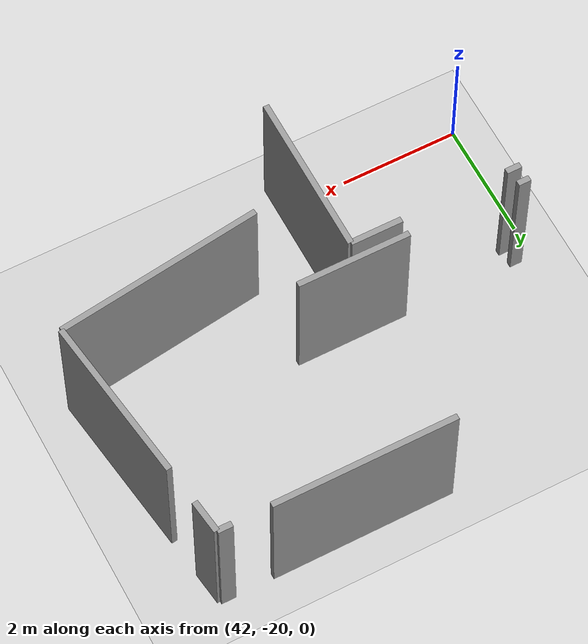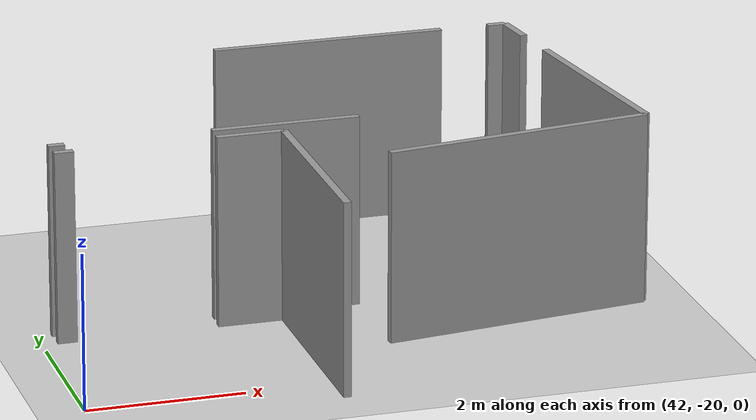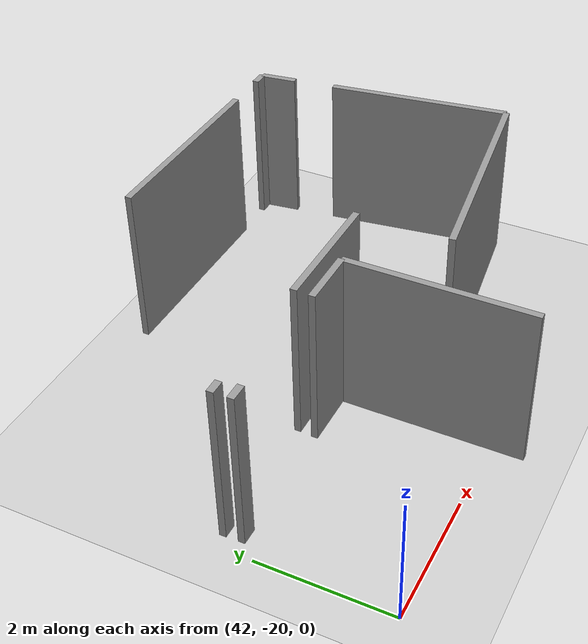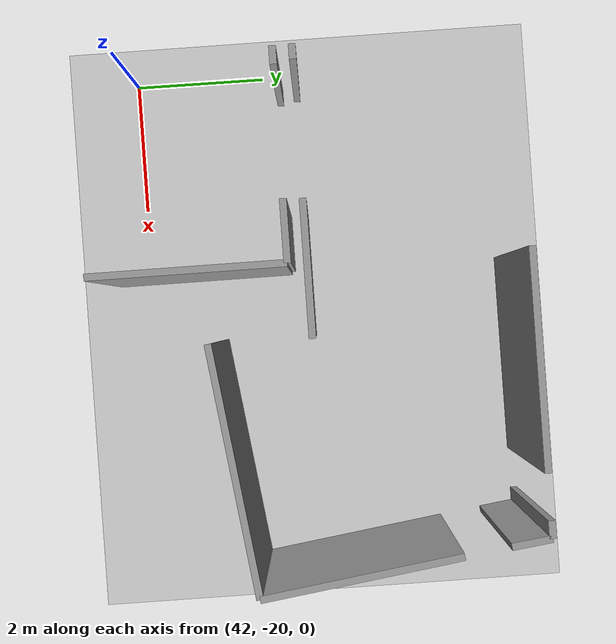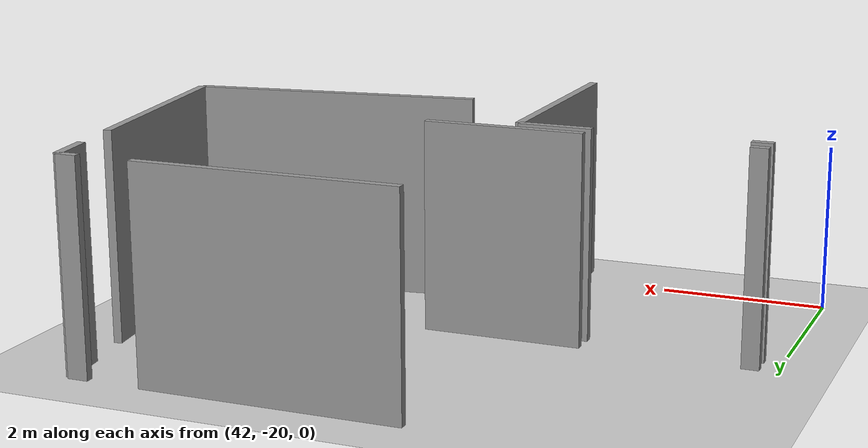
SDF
<sdf version="1.6">
 <world name="default">
  <model name="ground_plane">
   <static>1</static>
   <link name="link">
    <collision name="collision">
     <geometry><plane><normal>0 0 1</normal><size>100 100</size></plane></geometry>
     <surface><friction><ode><mu>100</mu><mu2>50</mu2></ode></friction></surface>
    </collision>
    <visual name="visual">
     <cast_shadows>0</cast_shadows>
     <geometry><plane><normal>0 0 1</normal><size>100 100</size></plane></geometry>
     <material>
      <script><uri>file://media/materials/scripts/gazebo.material</uri><name>Gazebo/Grey</name></script>
     </material>
    </visual>
   </link>
  </model>
  <model name="0510032260_A_40_1_102">
   <static>1</static>
   <link name="Wall_525">
    <collision name="Wall_525_Collision">
     <geometry><box><size>0.250290334249 0.1 2.5</size></box></geometry>
     <pose>0.125145167125 0 1.25 0 0 0</pose>
    </collision>
    <visual name="Wall_525_Visual">
     <pose>0.125145167125 0 1.25 0 0 0</pose>
     <geometry><box><size>0.250290334249 0.1 2.5</size></box></geometry>
     <material>
      <script><uri>file://media/materials/scripts/gazebo.material</uri><name>Gazebo/Grey</name></script>
      <ambient>1 1 1 1</ambient>
     </material>
    </visual>
    <pose>92.5025860373 -48.5146944034 0 0 0 0.0</pose>
   </link>
   <link name="Wall_526">
    <collision name="Wall_526_Collision">
     <geometry><box><size>0.871954663434 0.1 2.5</size></box></geometry>
     <pose>0.435977331717 0 1.25 0 0 0</pose>
    </collision>
    <visual name="Wall_526_Visual">
     <pose>0.435977331717 0 1.25 0 0 0</pose>
     <geometry><box><size>0.871954663434 0.1 2.5</size></box></geometry>
     <material>
      <script><uri>file://media/materials/scripts/gazebo.material</uri><name>Gazebo/Grey</name></script>
      <ambient>1 1 1 1</ambient>
     </material>
    </visual>
    <pose>94.5668466845 -48.5146944034 0 0 0 0.0</pose>
   </link>
   <link name="Wall_527">
    <collision name="Wall_527_Collision">
     <geometry><box><size>2.7535770756 0.1 2.5</size></box></geometry>
     <pose>1.3767885378 0 1.25 0 0 0</pose>
    </collision>
    <visual name="Wall_527_Visual">
     <pose>1.3767885378 0 1.25 0 0 0</pose>
     <geometry><box><size>2.7535770756 0.1 2.5</size></box></geometry>
     <material>
      <script><uri>file://media/materials/scripts/gazebo.material</uri><name>Gazebo/Grey</name></script>
      <ambient>1 1 1 1</ambient>
     </material>
    </visual>
    <pose>95.4388013479 -48.5146944034 0 0 0 -1.56941352058</pose>
   </link>
   <link name="Wall_528">
    <collision name="Wall_528_Collision">
     <geometry><box><size>1.90256192211 0.1 2.5</size></box></geometry>
     <pose>0.951280961054 0 1.25 0 0 0</pose>
    </collision>
    <visual name="Wall_528_Visual">
     <pose>0.951280961054 0 1.25 0 0 0</pose>
     <geometry><box><size>1.90256192211 0.1 2.5</size></box></geometry>
     <material>
      <script><uri>file://media/materials/scripts/gazebo.material</uri><name>Gazebo/Grey</name></script>
      <ambient>1 1 1 1</ambient>
     </material>
    </visual>
    <pose>96.483370035 -48.247523433 0 0 0 3.14159265359</pose>
   </link>
   <link name="Wall_529">
    <collision name="Wall_529_Collision">
     <geometry><box><size>0.208659893259 0.1 2.5</size></box></geometry>
     <pose>0.104329946629 0 1.25 0 0 0</pose>
    </collision>
    <visual name="Wall_529_Visual">
     <pose>0.104329946629 0 1.25 0 0 0</pose>
     <geometry><box><size>0.208659893259 0.1 2.5</size></box></geometry>
     <material>
      <script><uri>file://media/materials/scripts/gazebo.material</uri><name>Gazebo/Grey</name></script>
      <ambient>1 1 1 1</ambient>
     </material>
    </visual>
    <pose>92.7028690735 -48.247523433 0 0 0 3.14159265359</pose>
   </link>
   <link name="Wall_532">
    <collision name="Wall_532_Collision">
     <geometry><box><size>3.07786034764 0.1 2.5</size></box></geometry>
     <pose>1.53893017382 0 1.25 0 0 0</pose>
    </collision>
    <visual name="Wall_532_Visual">
     <pose>1.53893017382 0 1.25 0 0 0</pose>
     <geometry><box><size>3.07786034764 0.1 2.5</size></box></geometry>
     <material>
      <script><uri>file://media/materials/scripts/gazebo.material</uri><name>Gazebo/Grey</name></script>
      <ambient>1 1 1 1</ambient>
     </material>
    </visual>
    <pose>95.4388013479 -45.2027897472 0 0 0 0.0</pose>
   </link>
   <link name="Wall_533">
    <collision name="Wall_533_Collision">
     <geometry><box><size>0.246228827811 0.1 2.5</size></box></geometry>
     <pose>0.123114413906 0 1.25 0 0 0</pose>
    </collision>
    <visual name="Wall_533_Visual">
     <pose>0.123114413906 0 1.25 0 0 0</pose>
     <geometry><box><size>0.246228827811 0.1 2.5</size></box></geometry>
     <material>
      <script><uri>file://media/materials/scripts/gazebo.material</uri><name>Gazebo/Grey</name></script>
      <ambient>1 1 1 1</ambient>
     </material>
    </visual>
    <pose>99.1550797388 -45.2027897472 0 0 0 0.0</pose>
   </link>
   <link name="Wall_534">
    <collision name="Wall_534_Collision">
     <geometry><box><size>0.5651376439 0.1 2.5</size></box></geometry>
     <pose>0.28256882195 0 1.25 0 0 0</pose>
    </collision>
    <visual name="Wall_534_Visual">
     <pose>0.28256882195 0 1.25 0 0 0</pose>
     <geometry><box><size>0.5651376439 0.1 2.5</size></box></geometry>
     <material>
      <script><uri>file://media/materials/scripts/gazebo.material</uri><name>Gazebo/Grey</name></script>
      <ambient>1 1 1 1</ambient>
     </material>
    </visual>
    <pose>99.4013085666 -45.2027897472 0 0 0 -1.44242998823</pose>
   </link>
   <link name="Wall_535">
    <collision name="Wall_535_Collision">
     <geometry><box><size>2.82372132419 0.1 2.5</size></box></geometry>
     <pose>1.4118606621 0 1.25 0 0 0</pose>
    </collision>
    <visual name="Wall_535_Visual">
     <pose>1.4118606621 0 1.25 0 0 0</pose>
     <geometry><box><size>2.82372132419 0.1 2.5</size></box></geometry>
     <material>
      <script><uri>file://media/materials/scripts/gazebo.material</uri><name>Gazebo/Grey</name></script>
      <ambient>1 1 1 1</ambient>
     </material>
    </visual>
    <pose>99.5612303826 -46.401822601 0 0 0 -1.43372401084</pose>
   </link>
   <link name="Wall_536">
    <collision name="Wall_536_Collision">
     <geometry><box><size>3.52024555961 0.1 2.5</size></box></geometry>
     <pose>1.7601227798 0 1.25 0 0 0</pose>
    </collision>
    <visual name="Wall_536_Visual">
     <pose>1.7601227798 0 1.25 0 0 0</pose>
     <geometry><box><size>3.52024555961 0.1 2.5</size></box></geometry>
     <material>
      <script><uri>file://media/materials/scripts/gazebo.material</uri><name>Gazebo/Grey</name></script>
      <ambient>1 1 1 1</ambient>
     </material>
    </visual>
    <pose>99.9470734942 -49.1990582382 0 0 0 -3.00844547766</pose>
   </link>
   <pose>-50.3 30.7834798226 0 0 0 0</pose>
  </model>
 </world>
</sdf>
